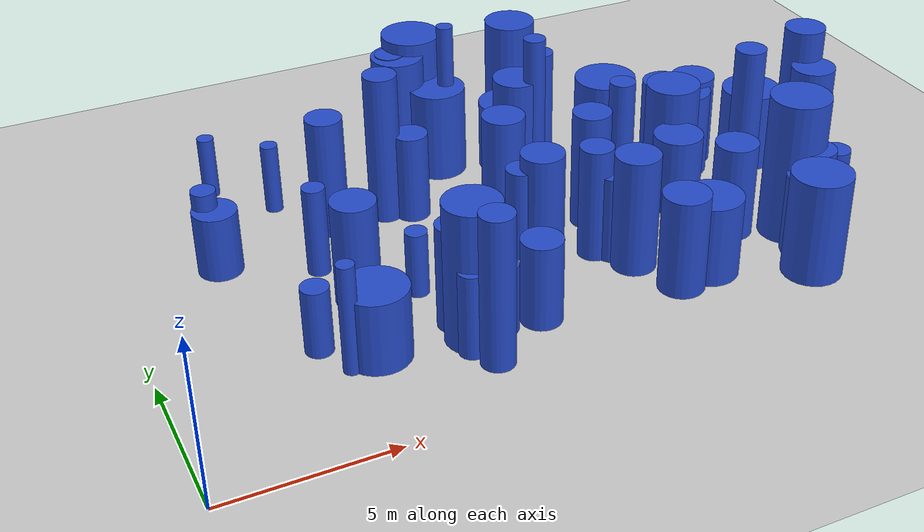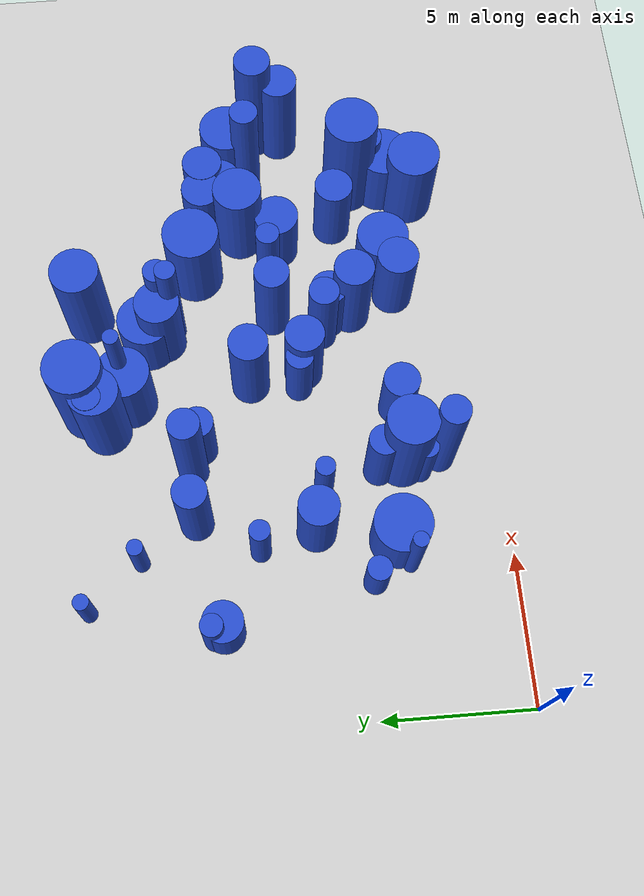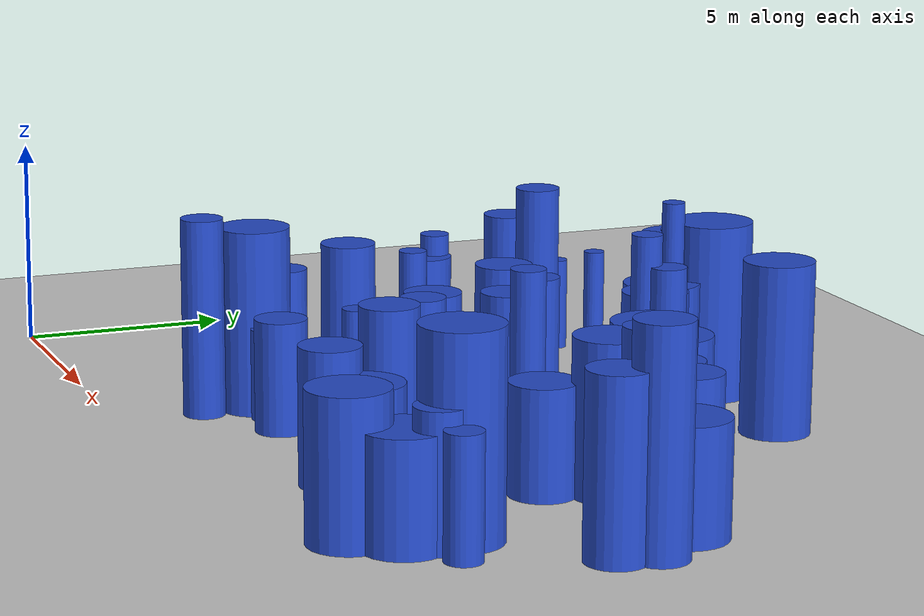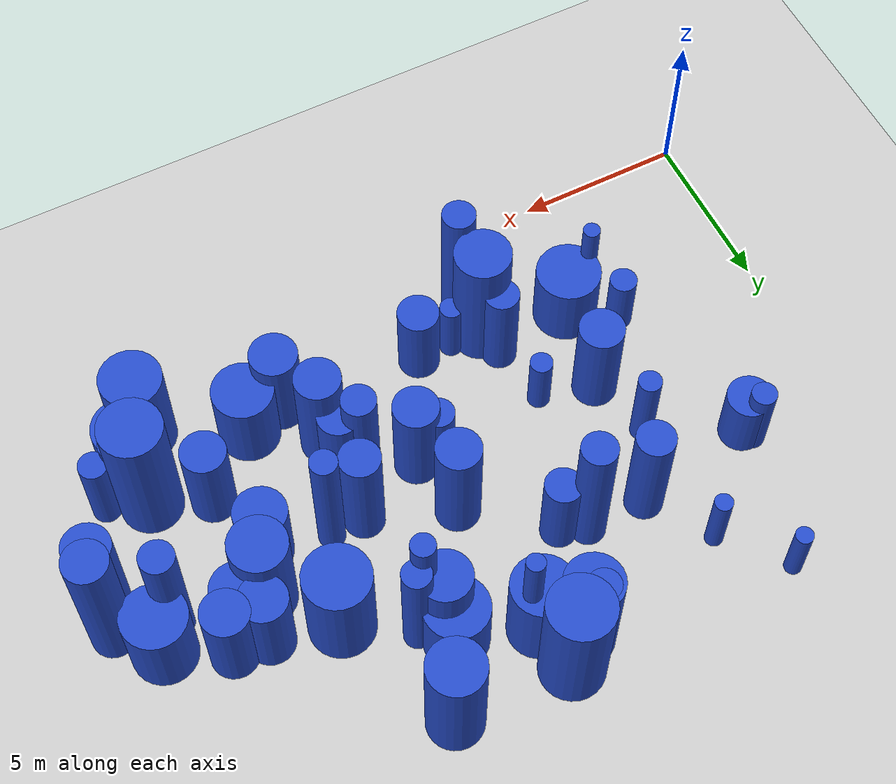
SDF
<sdf version="1.6">
 <world name="default">
  <model name="ground_plane">
   <static>1</static>
   <link name="link">
    <collision name="collision">
     <geometry><plane><normal>0 0 1</normal><size>100 100</size></plane></geometry>
     <surface><friction><ode><mu>100</mu><mu2>50</mu2></ode></friction></surface>
    </collision>
    <visual name="visual">
     <cast_shadows>0</cast_shadows>
     <geometry><plane><normal>0 0 1</normal><size>100 100</size></plane></geometry>
     <material>
      <script><uri>file://media/materials/scripts/gazebo.material</uri><name>Gazebo/Grey</name></script>
     </material>
    </visual>
   </link>
  </model>
  <model name="0">
   <static>0</static>
   <link name="link">
    <inertial>
     <mass>2</mass>
     <inertia><ixx>3.82085</ixx><ixy>0</ixy><ixz>0</ixz><iyy>3.82085</iyy><iyz>0</iyz><izz>0.122841</izz></inertia>
    </inertial>
    <collision name="collision">
     <geometry><cylinder><length>4.74937</length><radius>0.350486</radius></cylinder></geometry>
     <surface><contact><collide_without_contact>1</collide_without_contact></contact></surface>
    </collision>
    <visual name="visual">
     <geometry><cylinder><length>4.74937</length><radius>0.350486</radius></cylinder></geometry>
     <material>
      <script><uri>file://media/materials/scripts/gazebo.material</uri><name>Gazebo/Blue</name></script>
     </material>
    </visual>
    <gravity>0</gravity>
   </link>
   <pose>13.9637 10.7957 2.37469 0 -0 0</pose>
  </model>
  <model name="23">
   <static>0</static>
   <link name="link">
    <inertial>
     <mass>2</mass>
     <inertia><ixx>1.86215</ixx><ixy>0</ixy><ixz>0</ixz><iyy>1.86215</iyy><iyz>0</iyz><izz>0.4961</izz></inertia>
    </inertial>
    <collision name="collision">
     <geometry><cylinder><length>3.11201</length><radius>0.704343</radius></cylinder></geometry>
     <surface><contact><collide_without_contact>1</collide_without_contact></contact></surface>
    </collision>
    <visual name="visual">
     <geometry><cylinder><length>3.11201</length><radius>0.704343</radius></cylinder></geometry>
     <material>
      <script><uri>file://media/materials/scripts/gazebo.material</uri><name>Gazebo/Blue</name></script>
     </material>
    </visual>
    <gravity>0</gravity>
   </link>
   <pose>14.7881 2.99423 1.55601 0 -0 0</pose>
  </model>
  <model name="28">
   <static>0</static>
   <link name="link">
    <inertial>
     <mass>2</mass>
     <inertia><ixx>1.90148</ixx><ixy>0</ixy><ixz>0</ixz><iyy>1.90148</iyy><iyz>0</iyz><izz>0.266141</izz></inertia>
    </inertial>
    <collision name="collision">
     <geometry><cylinder><length>3.25737</length><radius>0.515889</radius></cylinder></geometry>
     <surface><contact><collide_without_contact>1</collide_without_contact></contact></surface>
    </collision>
    <visual name="visual">
     <geometry><cylinder><length>3.25737</length><radius>0.515889</radius></cylinder></geometry>
     <material>
      <script><uri>file://media/materials/scripts/gazebo.material</uri><name>Gazebo/Blue</name></script>
     </material>
    </visual>
    <gravity>0</gravity>
   </link>
   <pose>8.19868 4.18258 1.62868 0 -0 0</pose>
  </model>
  <model name="42">
   <static>0</static>
   <link name="link">
    <inertial>
     <mass>2</mass>
     <inertia><ixx>1.3081</ixx><ixy>0</ixy><ixz>0</ixz><iyy>1.3081</iyy><iyz>0</iyz><izz>0.176853</izz></inertia>
    </inertial>
    <collision name="collision">
     <geometry><cylinder><length>2.70519</length><radius>0.420539</radius></cylinder></geometry>
     <surface><contact><collide_without_contact>1</collide_without_contact></contact></surface>
    </collision>
    <visual name="visual">
     <geometry><cylinder><length>2.70519</length><radius>0.420539</radius></cylinder></geometry>
     <material>
      <script><uri>file://media/materials/scripts/gazebo.material</uri><name>Gazebo/Blue</name></script>
     </material>
    </visual>
    <gravity>0</gravity>
   </link>
   <pose>20.533 3.76774 1.3526 0 -0 0</pose>
  </model>
  <model name="56">
   <static>0</static>
   <link name="link">
    <inertial>
     <mass>2</mass>
     <inertia><ixx>1.34214</ixx><ixy>0</ixy><ixz>0</ixz><iyy>1.34214</iyy><iyz>0</iyz><izz>0.594662</izz></inertia>
    </inertial>
    <collision name="collision">
     <geometry><cylinder><length>2.50377</length><radius>0.771143</radius></cylinder></geometry>
     <surface><contact><collide_without_contact>1</collide_without_contact></contact></surface>
    </collision>
    <visual name="visual">
     <geometry><cylinder><length>2.50377</length><radius>0.771143</radius></cylinder></geometry>
     <material>
      <script><uri>file://media/materials/scripts/gazebo.material</uri><name>Gazebo/Blue</name></script>
     </material>
    </visual>
    <gravity>0</gravity>
   </link>
   <pose>17.0113 6.99255 1.25189 0 -0 0</pose>
  </model>
  <model name="65">
   <static>0</static>
   <link name="link">
    <inertial>
     <mass>2</mass>
     <inertia><ixx>1.48381</ixx><ixy>0</ixy><ixz>0</ixz><iyy>1.48381</iyy><iyz>0</iyz><izz>0.389355</izz></inertia>
    </inertial>
    <collision name="collision">
     <geometry><cylinder><length>2.78116</length><radius>0.623983</radius></cylinder></geometry>
     <surface><contact><collide_without_contact>1</collide_without_contact></contact></surface>
    </collision>
    <visual name="visual">
     <geometry><cylinder><length>2.78116</length><radius>0.623983</radius></cylinder></geometry>
     <material>
      <script><uri>file://media/materials/scripts/gazebo.material</uri><name>Gazebo/Blue</name></script>
     </material>
    </visual>
    <gravity>0</gravity>
   </link>
   <pose>13.9256 5.41182 1.39058 0 -0 0</pose>
  </model>
  <model name="67">
   <static>0</static>
   <link name="link">
    <inertial>
     <mass>2</mass>
     <inertia><ixx>3.45913</ixx><ixy>0</ixy><ixz>0</ixz><iyy>3.45913</iyy><iyz>0</iyz><izz>0.154991</izz></inertia>
    </inertial>
    <collision name="collision">
     <geometry><cylinder><length>4.50442</length><radius>0.39369</radius></cylinder></geometry>
     <surface><contact><collide_without_contact>1</collide_without_contact></contact></surface>
    </collision>
    <visual name="visual">
     <geometry><cylinder><length>4.50442</length><radius>0.39369</radius></cylinder></geometry>
     <material>
      <script><uri>file://media/materials/scripts/gazebo.material</uri><name>Gazebo/Blue</name></script>
     </material>
    </visual>
    <gravity>0</gravity>
   </link>
   <pose>15.1867 7.39624 2.25221 0 -0 0</pose>
  </model>
  <model name="69">
   <static>0</static>
   <link name="link">
    <inertial>
     <mass>2</mass>
     <inertia><ixx>2.30583</ixx><ixy>0</ixy><ixz>0</ixz><iyy>2.30583</iyy><iyz>0</iyz><izz>0.930994</izz></inertia>
    </inertial>
    <collision name="collision">
     <geometry><cylinder><length>3.32295</length><radius>0.96488</radius></cylinder></geometry>
     <surface><contact><collide_without_contact>1</collide_without_contact></contact></surface>
    </collision>
    <visual name="visual">
     <geometry><cylinder><length>3.32295</length><radius>0.96488</radius></cylinder></geometry>
     <material>
      <script><uri>file://media/materials/scripts/gazebo.material</uri><name>Gazebo/Blue</name></script>
     </material>
    </visual>
    <gravity>0</gravity>
   </link>
   <pose>16.075 9.98892 1.66147 0 -0 0</pose>
  </model>
  <model name="75">
   <static>0</static>
   <link name="link">
    <inertial>
     <mass>2</mass>
     <inertia><ixx>2.1011</ixx><ixy>0</ixy><ixz>0</ixz><iyy>2.1011</iyy><iyz>0</iyz><izz>0.443889</izz></inertia>
    </inertial>
    <collision name="collision">
     <geometry><cylinder><length>3.35781</length><radius>0.66625</radius></cylinder></geometry>
     <surface><contact><collide_without_contact>1</collide_without_contact></contact></surface>
    </collision>
    <visual name="visual">
     <geometry><cylinder><length>3.35781</length><radius>0.66625</radius></cylinder></geometry>
     <material>
      <script><uri>file://media/materials/scripts/gazebo.material</uri><name>Gazebo/Blue</name></script>
     </material>
    </visual>
    <gravity>0</gravity>
   </link>
   <pose>12.0255 6.41465 1.67891 0 -0 0</pose>
  </model>
  <model name="82">
   <static>0</static>
   <link name="link">
    <inertial>
     <mass>2</mass>
     <inertia><ixx>3.43627</ixx><ixy>0</ixy><ixz>0</ixz><iyy>3.43627</iyy><iyz>0</iyz><izz>0.901871</izz></inertia>
    </inertial>
    <collision name="collision">
     <geometry><cylinder><length>4.23226</length><radius>0.949669</radius></cylinder></geometry>
     <surface><contact><collide_without_contact>1</collide_without_contact></contact></surface>
    </collision>
    <visual name="visual">
     <geometry><cylinder><length>4.23226</length><radius>0.949669</radius></cylinder></geometry>
     <material>
      <script><uri>file://media/materials/scripts/gazebo.material</uri><name>Gazebo/Blue</name></script>
     </material>
    </visual>
    <gravity>0</gravity>
   </link>
   <pose>11.0478 13.9036 2.11613 0 -0 0</pose>
  </model>
  <model name="91">
   <static>0</static>
   <link name="link">
    <inertial>
     <mass>2</mass>
     <inertia><ixx>2.86372</ixx><ixy>0</ixy><ixz>0</ixz><iyy>2.86372</iyy><iyz>0</iyz><izz>0.467923</izz></inertia>
    </inertial>
    <collision name="collision">
     <geometry><cylinder><length>3.97222</length><radius>0.684049</radius></cylinder></geometry>
     <surface><contact><collide_without_contact>1</collide_without_contact></contact></surface>
    </collision>
    <visual name="visual">
     <geometry><cylinder><length>3.97222</length><radius>0.684049</radius></cylinder></geometry>
     <material>
      <script><uri>file://media/materials/scripts/gazebo.material</uri><name>Gazebo/Blue</name></script>
     </material>
    </visual>
    <gravity>0</gravity>
   </link>
   <pose>21.5916 6.60157 1.98611 0 -0 0</pose>
  </model>
  <model name="95">
   <static>0</static>
   <link name="link">
    <inertial>
     <mass>2</mass>
     <inertia><ixx>1.48896</ixx><ixy>0</ixy><ixz>0</ixz><iyy>1.48896</iyy><iyz>0</iyz><izz>0.809699</izz></inertia>
    </inertial>
    <collision name="collision">
     <geometry><cylinder><length>2.55043</length><radius>0.899833</radius></cylinder></geometry>
     <surface><contact><collide_without_contact>1</collide_without_contact></contact></surface>
    </collision>
    <visual name="visual">
     <geometry><cylinder><length>2.55043</length><radius>0.899833</radius></cylinder></geometry>
     <material>
      <script><uri>file://media/materials/scripts/gazebo.material</uri><name>Gazebo/Blue</name></script>
     </material>
    </visual>
    <gravity>0</gravity>
   </link>
   <pose>15.9343 3.34985 1.27521 0 -0 0</pose>
  </model>
  <model name="100">
   <static>0</static>
   <link name="link">
    <inertial>
     <mass>2</mass>
     <inertia><ixx>3.89591</ixx><ixy>0</ixy><ixz>0</ixz><iyy>3.89591</iyy><iyz>0</iyz><izz>0.839775</izz></inertia>
    </inertial>
    <collision name="collision">
     <geometry><cylinder><length>4.56685</length><radius>0.916392</radius></cylinder></geometry>
     <surface><contact><collide_without_contact>1</collide_without_contact></contact></surface>
    </collision>
    <visual name="visual">
     <geometry><cylinder><length>4.56685</length><radius>0.916392</radius></cylinder></geometry>
     <material>
      <script><uri>file://media/materials/scripts/gazebo.material</uri><name>Gazebo/Blue</name></script>
     </material>
    </visual>
    <gravity>0</gravity>
   </link>
   <pose>19.3333 4.19941 2.28343 0 -0 0</pose>
  </model>
  <model name="103">
   <static>0</static>
   <link name="link">
    <inertial>
     <mass>2</mass>
     <inertia><ixx>3.29088</ixx><ixy>0</ixy><ixz>0</ixz><iyy>3.29088</iyy><iyz>0</iyz><izz>0.244408</izz></inertia>
    </inertial>
    <collision name="collision">
     <geometry><cylinder><length>4.36028</length><radius>0.494377</radius></cylinder></geometry>
     <surface><contact><collide_without_contact>1</collide_without_contact></contact></surface>
    </collision>
    <visual name="visual">
     <geometry><cylinder><length>4.36028</length><radius>0.494377</radius></cylinder></geometry>
     <material>
      <script><uri>file://media/materials/scripts/gazebo.material</uri><name>Gazebo/Blue</name></script>
     </material>
    </visual>
    <gravity>0</gravity>
   </link>
   <pose>20.099 7.88013 2.18014 0 -0 0</pose>
  </model>
  <model name="104">
   <static>0</static>
   <link name="link">
    <inertial>
     <mass>2</mass>
     <inertia>
      <ixx>0.890538</ixx>
      <ixy>0</ixy>
      <ixz>0</ixz>
      <iyy>0.890538</iyy>
      <iyz>0</iyz>
      <izz>0.072293</izz>
     </inertia>
    </inertial>
    <collision name="collision">
     <geometry><cylinder><length>2.26414</length><radius>0.268874</radius></cylinder></geometry>
     <surface><contact><collide_without_contact>1</collide_without_contact></contact></surface>
    </collision>
    <visual name="visual">
     <geometry><cylinder><length>2.26414</length><radius>0.268874</radius></cylinder></geometry>
     <material>
      <script><uri>file://media/materials/scripts/gazebo.material</uri><name>Gazebo/Blue</name></script>
     </material>
    </visual>
    <gravity>0</gravity>
   </link>
   <pose>5.60318 12.2797 1.13207 0 -0 0</pose>
  </model>
  <model name="105">
   <static>0</static>
   <link name="link">
    <inertial>
     <mass>2</mass>
     <inertia><ixx>4.0356</ixx><ixy>0</ixy><ixz>0</ixz><iyy>4.0356</iyy><iyz>0</iyz><izz>0.07058</izz></inertia>
    </inertial>
    <collision name="collision">
     <geometry><cylinder><length>4.89917</length><radius>0.265669</radius></cylinder></geometry>
     <surface><contact><collide_without_contact>1</collide_without_contact></contact></surface>
    </collision>
    <visual name="visual">
     <geometry><cylinder><length>4.89917</length><radius>0.265669</radius></cylinder></geometry>
     <material>
      <script><uri>file://media/materials/scripts/gazebo.material</uri><name>Gazebo/Blue</name></script>
     </material>
    </visual>
    <gravity>0</gravity>
   </link>
   <pose>11.6727 12.5603 2.44958 0 -0 0</pose>
  </model>
  <model name="108">
   <static>0</static>
   <link name="link">
    <inertial>
     <mass>2</mass>
     <inertia><ixx>1.72026</ixx><ixy>0</ixy><ixz>0</ixz><iyy>1.72026</iyy><iyz>0</iyz><izz>0.476667</izz></inertia>
    </inertial>
    <collision name="collision">
     <geometry><cylinder><length>2.98187</length><radius>0.690411</radius></cylinder></geometry>
     <surface><contact><collide_without_contact>1</collide_without_contact></contact></surface>
    </collision>
    <visual name="visual">
     <geometry><cylinder><length>2.98187</length><radius>0.690411</radius></cylinder></geometry>
     <material>
      <script><uri>file://media/materials/scripts/gazebo.material</uri><name>Gazebo/Blue</name></script>
     </material>
    </visual>
    <gravity>0</gravity>
   </link>
   <pose>19.0479 9.46239 1.49094 0 -0 0</pose>
  </model>
  <model name="116">
   <static>0</static>
   <link name="link">
    <inertial>
     <mass>2</mass>
     <inertia><ixx>1.28323</ixx><ixy>0</ixy><ixz>0</ixz><iyy>1.28323</iyy><iyz>0</iyz><izz>0.885443</izz></inertia>
    </inertial>
    <collision name="collision">
     <geometry><cylinder><length>2.24567</length><radius>0.94098</radius></cylinder></geometry>
     <surface><contact><collide_without_contact>1</collide_without_contact></contact></surface>
    </collision>
    <visual name="visual">
     <geometry><cylinder><length>2.24567</length><radius>0.94098</radius></cylinder></geometry>
     <material>
      <script><uri>file://media/materials/scripts/gazebo.material</uri><name>Gazebo/Blue</name></script>
     </material>
    </visual>
    <gravity>0</gravity>
   </link>
   <pose>13.4699 11.7379 1.12284 0 -0 0</pose>
  </model>
  <model name="117">
   <static>0</static>
   <link name="link">
    <inertial>
     <mass>2</mass>
     <inertia><ixx>0.80327</ixx><ixy>0</ixy><ixz>0</ixz><iyy>0.80327</iyy><iyz>0</iyz><izz>0.164603</izz></inertia>
    </inertial>
    <collision name="collision">
     <geometry><cylinder><length>2.07986</length><radius>0.405713</radius></cylinder></geometry>
     <surface><contact><collide_without_contact>1</collide_without_contact></contact></surface>
    </collision>
    <visual name="visual">
     <geometry><cylinder><length>2.07986</length><radius>0.405713</radius></cylinder></geometry>
     <material>
      <script><uri>file://media/materials/scripts/gazebo.material</uri><name>Gazebo/Blue</name></script>
     </material>
    </visual>
    <gravity>0</gravity>
   </link>
   <pose>4.40351 4.67873 1.03993 0 -0 0</pose>
  </model>
  <model name="124">
   <static>0</static>
   <link name="link">
    <inertial>
     <mass>2</mass>
     <inertia><ixx>1.70853</ixx><ixy>0</ixy><ixz>0</ixz><iyy>1.70853</iyy><iyz>0</iyz><izz>0.488627</izz></inertia>
    </inertial>
    <collision name="collision">
     <geometry><cylinder><length>2.964</length><radius>0.699019</radius></cylinder></geometry>
     <surface><contact><collide_without_contact>1</collide_without_contact></contact></surface>
    </collision>
    <visual name="visual">
     <geometry><cylinder><length>2.964</length><radius>0.699019</radius></cylinder></geometry>
     <material>
      <script><uri>file://media/materials/scripts/gazebo.material</uri><name>Gazebo/Blue</name></script>
     </material>
    </visual>
    <gravity>0</gravity>
   </link>
   <pose>18.0058 9.5359 1.482 0 -0 0</pose>
  </model>
  <model name="130">
   <static>0</static>
   <link name="link">
    <inertial>
     <mass>2</mass>
     <inertia><ixx>2.41663</ixx><ixy>0</ixy><ixz>0</ixz><iyy>2.41663</iyy><iyz>0</iyz><izz>0.709872</izz></inertia>
    </inertial>
    <collision name="collision">
     <geometry><cylinder><length>3.51713</length><radius>0.842539</radius></cylinder></geometry>
     <surface><contact><collide_without_contact>1</collide_without_contact></contact></surface>
    </collision>
    <visual name="visual">
     <geometry><cylinder><length>3.51713</length><radius>0.842539</radius></cylinder></geometry>
     <material>
      <script><uri>file://media/materials/scripts/gazebo.material</uri><name>Gazebo/Blue</name></script>
     </material>
    </visual>
    <gravity>0</gravity>
   </link>
   <pose>17.5617 8.2997 1.75856 0 -0 0</pose>
  </model>
  <model name="154">
   <static>0</static>
   <link name="link">
    <inertial>
     <mass>2</mass>
     <inertia>
      <ixx>1.92605</ixx>
      <ixy>0</ixy>
      <ixz>0</ixz>
      <iyy>1.92605</iyy>
      <iyz>0</iyz>
      <izz>0.0642289</izz>
     </inertia>
    </inertial>
    <collision name="collision">
     <geometry><cylinder><length>3.37099</length><radius>0.253434</radius></cylinder></geometry>
     <surface><contact><collide_without_contact>1</collide_without_contact></contact></surface>
    </collision>
    <visual name="visual">
     <geometry><cylinder><length>3.37099</length><radius>0.253434</radius></cylinder></geometry>
     <material>
      <script><uri>file://media/materials/scripts/gazebo.material</uri><name>Gazebo/Blue</name></script>
     </material>
    </visual>
    <gravity>0</gravity>
   </link>
   <pose>4.89102 3.45856 1.6855 0 -0 0</pose>
  </model>
  <model name="160">
   <static>0</static>
   <link name="link">
    <inertial>
     <mass>2</mass>
     <inertia><ixx>4.26634</ixx><ixy>0</ixy><ixz>0</ixz><iyy>4.26634</iyy><iyz>0</iyz><izz>0.406906</izz></inertia>
    </inertial>
    <collision name="collision">
     <geometry><cylinder><length>4.93734</length><radius>0.637892</radius></cylinder></geometry>
     <surface><contact><collide_without_contact>1</collide_without_contact></contact></surface>
    </collision>
    <visual name="visual">
     <geometry><cylinder><length>4.93734</length><radius>0.637892</radius></cylinder></geometry>
     <material>
      <script><uri>file://media/materials/scripts/gazebo.material</uri><name>Gazebo/Blue</name></script>
     </material>
    </visual>
    <gravity>0</gravity>
   </link>
   <pose>21.7808 7.46793 2.46867 0 -0 0</pose>
  </model>
  <model name="163">
   <static>0</static>
   <link name="link">
    <inertial>
     <mass>2</mass>
     <inertia><ixx>2.54391</ixx><ixy>0</ixy><ixz>0</ixz><iyy>2.54391</iyy><iyz>0</iyz><izz>0.356458</izz></inertia>
    </inertial>
    <collision name="collision">
     <geometry><cylinder><length>3.7675</length><radius>0.597041</radius></cylinder></geometry>
     <surface><contact><collide_without_contact>1</collide_without_contact></contact></surface>
    </collision>
    <visual name="visual">
     <geometry><cylinder><length>3.7675</length><radius>0.597041</radius></cylinder></geometry>
     <material>
      <script><uri>file://media/materials/scripts/gazebo.material</uri><name>Gazebo/Blue</name></script>
     </material>
    </visual>
    <gravity>0</gravity>
   </link>
   <pose>14.1482 7.34496 1.88375 0 -0 0</pose>
  </model>
  <model name="168">
   <static>0</static>
   <link name="link">
    <inertial>
     <mass>2</mass>
     <inertia>
      <ixx>0.823893</ixx>
      <ixy>0</ixy>
      <ixz>0</ixz>
      <iyy>0.823893</iyy>
      <iyz>0</iyz>
      <izz>0.11943</izz>
     </inertia>
    </inertial>
    <collision name="collision">
     <geometry><cylinder><length>2.14128</length><radius>0.345586</radius></cylinder></geometry>
     <surface><contact><collide_without_contact>1</collide_without_contact></contact></surface>
    </collision>
    <visual name="visual">
     <geometry><cylinder><length>2.14128</length><radius>0.345586</radius></cylinder></geometry>
     <material>
      <script><uri>file://media/materials/scripts/gazebo.material</uri><name>Gazebo/Blue</name></script>
     </material>
    </visual>
    <gravity>0</gravity>
   </link>
   <pose>9.36227 3.30652 1.07064 0 -0 0</pose>
  </model>
  <model name="186">
   <static>0</static>
   <link name="link">
    <inertial>
     <mass>2</mass>
     <inertia><ixx>1.49718</ixx><ixy>0</ixy><ixz>0</ixz><iyy>1.49718</iyy><iyz>0</iyz><izz>0.218656</izz></inertia>
    </inertial>
    <collision name="collision">
     <geometry><cylinder><length>2.88568</length><radius>0.467607</radius></cylinder></geometry>
     <surface><contact><collide_without_contact>1</collide_without_contact></contact></surface>
    </collision>
    <visual name="visual">
     <geometry><cylinder><length>2.88568</length><radius>0.467607</radius></cylinder></geometry>
     <material>
      <script><uri>file://media/materials/scripts/gazebo.material</uri><name>Gazebo/Blue</name></script>
     </material>
    </visual>
    <gravity>0</gravity>
   </link>
   <pose>11.4374 6.61972 1.44284 0 -0 0</pose>
  </model>
  <model name="204">
   <static>0</static>
   <link name="link">
    <inertial>
     <mass>2</mass>
     <inertia><ixx>2.60219</ixx><ixy>0</ixy><ixz>0</ixz><iyy>2.60219</iyy><iyz>0</iyz><izz>0.216827</izz></inertia>
    </inertial>
    <collision name="collision">
     <geometry><cylinder><length>3.86816</length><radius>0.465647</radius></cylinder></geometry>
     <surface><contact><collide_without_contact>1</collide_without_contact></contact></surface>
    </collision>
    <visual name="visual">
     <geometry><cylinder><length>3.86816</length><radius>0.465647</radius></cylinder></geometry>
     <material>
      <script><uri>file://media/materials/scripts/gazebo.material</uri><name>Gazebo/Blue</name></script>
     </material>
    </visual>
    <gravity>0</gravity>
   </link>
   <pose>10.1307 13.4974 1.93408 0 -0 0</pose>
  </model>
  <model name="210">
   <static>0</static>
   <link name="link">
    <inertial>
     <mass>2</mass>
     <inertia><ixx>3.04474</ixx><ixy>0</ixy><ixz>0</ixz><iyy>3.04474</iyy><iyz>0</iyz><izz>0.671848</izz></inertia>
    </inertial>
    <collision name="collision">
     <geometry><cylinder><length>4.03149</length><radius>0.819663</radius></cylinder></geometry>
     <surface><contact><collide_without_contact>1</collide_without_contact></contact></surface>
    </collision>
    <visual name="visual">
     <geometry><cylinder><length>4.03149</length><radius>0.819663</radius></cylinder></geometry>
     <material>
      <script><uri>file://media/materials/scripts/gazebo.material</uri><name>Gazebo/Blue</name></script>
     </material>
    </visual>
    <gravity>0</gravity>
   </link>
   <pose>14.5509 13.827 2.01574 0 -0 0</pose>
  </model>
  <model name="239">
   <static>0</static>
   <link name="link">
    <inertial>
     <mass>2</mass>
     <inertia>
      <ixx>0.915663</ixx>
      <ixy>0</ixy>
      <ixz>0</ixz>
      <iyy>0.915663</iyy>
      <iyz>0</iyz>
      <izz>0.444297</izz>
     </inertia>
    </inertial>
    <collision name="collision">
     <geometry><cylinder><length>2.03987</length><radius>0.666556</radius></cylinder></geometry>
     <surface><contact><collide_without_contact>1</collide_without_contact></contact></surface>
    </collision>
    <visual name="visual">
     <geometry><cylinder><length>2.03987</length><radius>0.666556</radius></cylinder></geometry>
     <material>
      <script><uri>file://media/materials/scripts/gazebo.material</uri><name>Gazebo/Blue</name></script>
     </material>
    </visual>
    <gravity>0</gravity>
   </link>
   <pose>3.13023 9.67576 1.01994 0 -0 0</pose>
  </model>
  <model name="251">
   <static>0</static>
   <link name="link">
    <inertial>
     <mass>2</mass>
     <inertia><ixx>1.77631</ixx><ixy>0</ixy><ixz>0</ixz><iyy>1.77631</iyy><iyz>0</iyz><izz>0.434542</izz></inertia>
    </inertial>
    <collision name="collision">
     <geometry><cylinder><length>3.05847</length><radius>0.659198</radius></cylinder></geometry>
     <surface><contact><collide_without_contact>1</collide_without_contact></contact></surface>
    </collision>
    <visual name="visual">
     <geometry><cylinder><length>3.05847</length><radius>0.659198</radius></cylinder></geometry>
     <material>
      <script><uri>file://media/materials/scripts/gazebo.material</uri><name>Gazebo/Blue</name></script>
     </material>
    </visual>
    <gravity>0</gravity>
   </link>
   <pose>17.7293 4.91754 1.52923 0 -0 0</pose>
  </model>
  <model name="255">
   <static>0</static>
   <link name="link">
    <inertial>
     <mass>2</mass>
     <inertia><ixx>1.3897</ixx><ixy>0</ixy><ixz>0</ixz><iyy>1.3897</iyy><iyz>0</iyz><izz>0.118542</izz></inertia>
    </inertial>
    <collision name="collision">
     <geometry><cylinder><length>2.82534</length><radius>0.344299</radius></cylinder></geometry>
     <surface><contact><collide_without_contact>1</collide_without_contact></contact></surface>
    </collision>
    <visual name="visual">
     <geometry><cylinder><length>2.82534</length><radius>0.344299</radius></cylinder></geometry>
     <material>
      <script><uri>file://media/materials/scripts/gazebo.material</uri><name>Gazebo/Blue</name></script>
     </material>
    </visual>
    <gravity>0</gravity>
   </link>
   <pose>5.699 8.34542 1.41267 0 -0 0</pose>
  </model>
  <model name="270">
   <static>0</static>
   <link name="link">
    <inertial>
     <mass>2</mass>
     <inertia><ixx>1.51486</ixx><ixy>0</ixy><ixz>0</ixz><iyy>1.51486</iyy><iyz>0</iyz><izz>0.898197</izz></inertia>
    </inertial>
    <collision name="collision">
     <geometry><cylinder><length>2.52875</length><radius>0.947732</radius></cylinder></geometry>
     <surface><contact><collide_without_contact>1</collide_without_contact></contact></surface>
    </collision>
    <visual name="visual">
     <geometry><cylinder><length>2.52875</length><radius>0.947732</radius></cylinder></geometry>
     <material>
      <script><uri>file://media/materials/scripts/gazebo.material</uri><name>Gazebo/Blue</name></script>
     </material>
    </visual>
    <gravity>0</gravity>
   </link>
   <pose>19.3232 2.96096 1.26437 0 -0 0</pose>
  </model>
  <model name="271">
   <static>0</static>
   <link name="link">
    <inertial>
     <mass>2</mass>
     <inertia><ixx>2.3098</ixx><ixy>0</ixy><ixz>0</ixz><iyy>2.3098</iyy><iyz>0</iyz><izz>0.262045</izz></inertia>
    </inertial>
    <collision name="collision">
     <geometry><cylinder><length>3.61562</length><radius>0.511903</radius></cylinder></geometry>
     <surface><contact><collide_without_contact>1</collide_without_contact></contact></surface>
    </collision>
    <visual name="visual">
     <geometry><cylinder><length>3.61562</length><radius>0.511903</radius></cylinder></geometry>
     <material>
      <script><uri>file://media/materials/scripts/gazebo.material</uri><name>Gazebo/Blue</name></script>
     </material>
    </visual>
    <gravity>0</gravity>
   </link>
   <pose>13.3896 5.65712 1.80781 0 -0 0</pose>
  </model>
  <model name="290">
   <static>0</static>
   <link name="link">
    <inertial>
     <mass>2</mass>
     <inertia><ixx>1.8244</ixx><ixy>0</ixy><ixz>0</ixz><iyy>1.8244</iyy><iyz>0</iyz><izz>0.817081</izz></inertia>
    </inertial>
    <collision name="collision">
     <geometry><cylinder><length>2.91465</length><radius>0.903926</radius></cylinder></geometry>
     <surface><contact><collide_without_contact>1</collide_without_contact></contact></surface>
    </collision>
    <visual name="visual">
     <geometry><cylinder><length>2.91465</length><radius>0.903926</radius></cylinder></geometry>
     <material>
      <script><uri>file://media/materials/scripts/gazebo.material</uri><name>Gazebo/Blue</name></script>
     </material>
    </visual>
    <gravity>0</gravity>
   </link>
   <pose>11.3039 12.4655 1.45732 0 -0 0</pose>
  </model>
  <model name="299">
   <static>0</static>
   <link name="link">
    <inertial>
     <mass>2</mass>
     <inertia><ixx>3.77595</ixx><ixy>0</ixy><ixz>0</ixz><iyy>3.77595</iyy><iyz>0</iyz><izz>0.246653</izz></inertia>
    </inertial>
    <collision name="collision">
     <geometry><cylinder><length>4.68143</length><radius>0.496641</radius></cylinder></geometry>
     <surface><contact><collide_without_contact>1</collide_without_contact></contact></surface>
    </collision>
    <visual name="visual">
     <geometry><cylinder><length>4.68143</length><radius>0.496641</radius></cylinder></geometry>
     <material>
      <script><uri>file://media/materials/scripts/gazebo.material</uri><name>Gazebo/Blue</name></script>
     </material>
    </visual>
    <gravity>0</gravity>
   </link>
   <pose>8.50836 2.07163 2.34071 0 -0 0</pose>
  </model>
  <model name="300">
   <static>0</static>
   <link name="link">
    <inertial>
     <mass>2</mass>
     <inertia><ixx>2.01141</ixx><ixy>0</ixy><ixz>0</ixz><iyy>2.01141</iyy><iyz>0</iyz><izz>0.445665</izz></inertia>
    </inertial>
    <collision name="collision">
     <geometry><cylinder><length>3.27589</length><radius>0.667582</radius></cylinder></geometry>
     <surface><contact><collide_without_contact>1</collide_without_contact></contact></surface>
    </collision>
    <visual name="visual">
     <geometry><cylinder><length>3.27589</length><radius>0.667582</radius></cylinder></geometry>
     <material>
      <script><uri>file://media/materials/scripts/gazebo.material</uri><name>Gazebo/Blue</name></script>
     </material>
    </visual>
    <gravity>0</gravity>
   </link>
   <pose>6.2201 6.46044 1.63795 0 -0 0</pose>
  </model>
  <model name="314">
   <static>0</static>
   <link name="link">
    <inertial>
     <mass>2</mass>
     <inertia><ixx>2.21041</ixx><ixy>0</ixy><ixz>0</ixz><iyy>2.21041</iyy><iyz>0</iyz><izz>0.827614</izz></inertia>
    </inertial>
    <collision name="collision">
     <geometry><cylinder><length>3.28323</length><radius>0.909733</radius></cylinder></geometry>
     <surface><contact><collide_without_contact>1</collide_without_contact></contact></surface>
    </collision>
    <visual name="visual">
     <geometry><cylinder><length>3.28323</length><radius>0.909733</radius></cylinder></geometry>
     <material>
      <script><uri>file://media/materials/scripts/gazebo.material</uri><name>Gazebo/Blue</name></script>
     </material>
    </visual>
    <gravity>0</gravity>
   </link>
   <pose>18.6549 2.02282 1.64161 0 -0 0</pose>
  </model>
  <model name="334">
   <static>0</static>
   <link name="link">
    <inertial>
     <mass>2</mass>
     <inertia>
      <ixx>0.709161</ixx>
      <ixy>0</ixy>
      <ixz>0</ixz>
      <iyy>0.709161</iyy>
      <iyz>0</iyz>
      <izz>0.0686356</izz>
     </inertia>
    </inertial>
    <collision name="collision">
     <geometry><cylinder><length>2.01223</length><radius>0.261984</radius></cylinder></geometry>
     <surface><contact><collide_without_contact>1</collide_without_contact></contact></surface>
    </collision>
    <visual name="visual">
     <geometry><cylinder><length>2.01223</length><radius>0.261984</radius></cylinder></geometry>
     <material>
      <script><uri>file://media/materials/scripts/gazebo.material</uri><name>Gazebo/Blue</name></script>
     </material>
    </visual>
    <gravity>0</gravity>
   </link>
   <pose>4.07556 14.0215 1.00611 0 -0 0</pose>
  </model>
  <model name="338">
   <static>0</static>
   <link name="link">
    <inertial>
     <mass>2</mass>
     <inertia><ixx>1.35917</ixx><ixy>0</ixy><ixz>0</ixz><iyy>1.35917</iyy><iyz>0</iyz><izz>0.376686</izz></inertia>
    </inertial>
    <collision name="collision">
     <geometry><cylinder><length>2.65046</length><radius>0.613748</radius></cylinder></geometry>
     <surface><contact><collide_without_contact>1</collide_without_contact></contact></surface>
    </collision>
    <visual name="visual">
     <geometry><cylinder><length>2.65046</length><radius>0.613748</radius></cylinder></geometry>
     <material>
      <script><uri>file://media/materials/scripts/gazebo.material</uri><name>Gazebo/Blue</name></script>
     </material>
    </visual>
    <gravity>0</gravity>
   </link>
   <pose>10.4404 3.32655 1.32523 0 -0 0</pose>
  </model>
  <model name="372">
   <static>0</static>
   <link name="link">
    <inertial>
     <mass>2</mass>
     <inertia><ixx>2.8286</ixx><ixy>0</ixy><ixz>0</ixz><iyy>2.8286</iyy><iyz>0</iyz><izz>0.178091</izz></inertia>
    </inertial>
    <collision name="collision">
     <geometry><cylinder><length>4.0543</length><radius>0.422008</radius></cylinder></geometry>
     <surface><contact><collide_without_contact>1</collide_without_contact></contact></surface>
    </collision>
    <visual name="visual">
     <geometry><cylinder><length>4.0543</length><radius>0.422008</radius></cylinder></geometry>
     <material>
      <script><uri>file://media/materials/scripts/gazebo.material</uri><name>Gazebo/Blue</name></script>
     </material>
    </visual>
    <gravity>0</gravity>
   </link>
   <pose>14.3321 11.1571 2.02715 0 -0 0</pose>
  </model>
  <model name="376">
   <static>0</static>
   <link name="link">
    <inertial>
     <mass>2</mass>
     <inertia><ixx>1.63634</ixx><ixy>0</ixy><ixz>0</ixz><iyy>1.63634</iyy><iyz>0</iyz><izz>0.645225</izz></inertia>
    </inertial>
    <collision name="collision">
     <geometry><cylinder><length>2.80756</length><radius>0.803259</radius></cylinder></geometry>
     <surface><contact><collide_without_contact>1</collide_without_contact></contact></surface>
    </collision>
    <visual name="visual">
     <geometry><cylinder><length>2.80756</length><radius>0.803259</radius></cylinder></geometry>
     <material>
      <script><uri>file://media/materials/scripts/gazebo.material</uri><name>Gazebo/Blue</name></script>
     </material>
    </visual>
    <gravity>0</gravity>
   </link>
   <pose>18.4415 8.9259 1.40378 0 -0 0</pose>
  </model>
  <model name="386">
   <static>0</static>
   <link name="link">
    <inertial>
     <mass>2</mass>
     <inertia><ixx>2.81265</ixx><ixy>0</ixy><ixz>0</ixz><iyy>2.81265</iyy><iyz>0</iyz><izz>0.701896</izz></inertia>
    </inertial>
    <collision name="collision">
     <geometry><cylinder><length>3.84321</length><radius>0.837793</radius></cylinder></geometry>
     <surface><contact><collide_without_contact>1</collide_without_contact></contact></surface>
    </collision>
    <visual name="visual">
     <geometry><cylinder><length>3.84321</length><radius>0.837793</radius></cylinder></geometry>
     <material>
      <script><uri>file://media/materials/scripts/gazebo.material</uri><name>Gazebo/Blue</name></script>
     </material>
    </visual>
    <gravity>0</gravity>
   </link>
   <pose>10.32 13.3099 1.9216 0 -0 0</pose>
  </model>
  <model name="388">
   <static>0</static>
   <link name="link">
    <inertial>
     <mass>2</mass>
     <inertia><ixx>1.30269</ixx><ixy>0</ixy><ixz>0</ixz><iyy>1.30269</iyy><iyz>0</iyz><izz>0.928459</izz></inertia>
    </inertial>
    <collision name="collision">
     <geometry><cylinder><length>2.24294</length><radius>0.963566</radius></cylinder></geometry>
     <surface><contact><collide_without_contact>1</collide_without_contact></contact></surface>
    </collision>
    <visual name="visual">
     <geometry><cylinder><length>2.24294</length><radius>0.963566</radius></cylinder></geometry>
     <material>
      <script><uri>file://media/materials/scripts/gazebo.material</uri><name>Gazebo/Blue</name></script>
     </material>
    </visual>
    <gravity>0</gravity>
   </link>
   <pose>5.75697 3.78995 1.12147 0 -0 0</pose>
  </model>
  <model name="392">
   <static>0</static>
   <link name="link">
    <inertial>
     <mass>2</mass>
     <inertia><ixx>1.16149</ixx><ixy>0</ixy><ixz>0</ixz><iyy>1.16149</iyy><iyz>0</iyz><izz>0.136449</izz></inertia>
    </inertial>
    <collision name="collision">
     <geometry><cylinder><length>2.56117</length><radius>0.36939</radius></cylinder></geometry>
     <surface><contact><collide_without_contact>1</collide_without_contact></contact></surface>
    </collision>
    <visual name="visual">
     <geometry><cylinder><length>2.56117</length><radius>0.36939</radius></cylinder></geometry>
     <material>
      <script><uri>file://media/materials/scripts/gazebo.material</uri><name>Gazebo/Blue</name></script>
     </material>
    </visual>
    <gravity>0</gravity>
   </link>
   <pose>2.94923 10.0031 1.28058 0 -0 0</pose>
  </model>
  <model name="408">
   <static>0</static>
   <link name="link">
    <inertial>
     <mass>2</mass>
     <inertia><ixx>2.5939</ixx><ixy>0</ixy><ixz>0</ixz><iyy>2.5939</iyy><iyz>0</iyz><izz>0.431404</izz></inertia>
    </inertial>
    <collision name="collision">
     <geometry><cylinder><length>3.77746</length><radius>0.656813</radius></cylinder></geometry>
     <surface><contact><collide_without_contact>1</collide_without_contact></contact></surface>
    </collision>
    <visual name="visual">
     <geometry><cylinder><length>3.77746</length><radius>0.656813</radius></cylinder></geometry>
     <material>
      <script><uri>file://media/materials/scripts/gazebo.material</uri><name>Gazebo/Blue</name></script>
     </material>
    </visual>
    <gravity>0</gravity>
   </link>
   <pose>11.6644 8.28685 1.88873 0 -0 0</pose>
  </model>
  <model name="417">
   <static>0</static>
   <link name="link">
    <inertial>
     <mass>2</mass>
     <inertia><ixx>1.48074</ixx><ixy>0</ixy><ixz>0</ixz><iyy>1.48074</iyy><iyz>0</iyz><izz>0.28943</izz></inertia>
    </inertial>
    <collision name="collision">
     <geometry><cylinder><length>2.83128</length><radius>0.537987</radius></cylinder></geometry>
     <surface><contact><collide_without_contact>1</collide_without_contact></contact></surface>
    </collision>
    <visual name="visual">
     <geometry><cylinder><length>2.83128</length><radius>0.537987</radius></cylinder></geometry>
     <material>
      <script><uri>file://media/materials/scripts/gazebo.material</uri><name>Gazebo/Blue</name></script>
     </material>
    </visual>
    <gravity>0</gravity>
   </link>
   <pose>9.40662 10.1091 1.41564 0 -0 0</pose>
  </model>
  <model name="427">
   <static>0</static>
   <link name="link">
    <inertial>
     <mass>2</mass>
     <inertia><ixx>1.67933</ixx><ixy>0</ixy><ixz>0</ixz><iyy>1.67933</iyy><iyz>0</iyz><izz>0.328664</izz></inertia>
    </inertial>
    <collision name="collision">
     <geometry><cylinder><length>3.01496</length><radius>0.573292</radius></cylinder></geometry>
     <surface><contact><collide_without_contact>1</collide_without_contact></contact></surface>
    </collision>
    <visual name="visual">
     <geometry><cylinder><length>3.01496</length><radius>0.573292</radius></cylinder></geometry>
     <material>
      <script><uri>file://media/materials/scripts/gazebo.material</uri><name>Gazebo/Blue</name></script>
     </material>
    </visual>
    <gravity>0</gravity>
   </link>
   <pose>19.6808 3.6029 1.50748 0 -0 0</pose>
  </model>
  <model name="431">
   <static>0</static>
   <link name="link">
    <inertial>
     <mass>2</mass>
     <inertia><ixx>1.54188</ixx><ixy>0</ixy><ixz>0</ixz><iyy>1.54188</iyy><iyz>0</iyz><izz>0.877681</izz></inertia>
    </inertial>
    <collision name="collision">
     <geometry><cylinder><length>2.57259</length><radius>0.936847</radius></cylinder></geometry>
     <surface><contact><collide_without_contact>1</collide_without_contact></contact></surface>
    </collision>
    <visual name="visual">
     <geometry><cylinder><length>2.57259</length><radius>0.936847</radius></cylinder></geometry>
     <material>
      <script><uri>file://media/materials/scripts/gazebo.material</uri><name>Gazebo/Blue</name></script>
     </material>
    </visual>
    <gravity>0</gravity>
   </link>
   <pose>20.7173 8.55203 1.28629 0 -0 0</pose>
  </model>
  <model name="436">
   <static>0</static>
   <link name="link">
    <inertial>
     <mass>2</mass>
     <inertia><ixx>3.52722</ixx><ixy>0</ixy><ixz>0</ixz><iyy>3.52722</iyy><iyz>0</iyz><izz>0.70407</izz></inertia>
    </inertial>
    <collision name="collision">
     <geometry><cylinder><length>4.36476</length><radius>0.839089</radius></cylinder></geometry>
     <surface><contact><collide_without_contact>1</collide_without_contact></contact></surface>
    </collision>
    <visual name="visual">
     <geometry><cylinder><length>4.36476</length><radius>0.839089</radius></cylinder></geometry>
     <material>
      <script><uri>file://media/materials/scripts/gazebo.material</uri><name>Gazebo/Blue</name></script>
     </material>
    </visual>
    <gravity>0</gravity>
   </link>
   <pose>8.40641 3.35895 2.18238 0 -0 0</pose>
  </model>
  <model name="448">
   <static>0</static>
   <link name="link">
    <inertial>
     <mass>2</mass>
     <inertia><ixx>4.00779</ixx><ixy>0</ixy><ixz>0</ixz><iyy>4.00779</iyy><iyz>0</iyz><izz>0.267893</izz></inertia>
    </inertial>
    <collision name="collision">
     <geometry><cylinder><length>4.82111</length><radius>0.517584</radius></cylinder></geometry>
     <surface><contact><collide_without_contact>1</collide_without_contact></contact></surface>
    </collision>
    <visual name="visual">
     <geometry><cylinder><length>4.82111</length><radius>0.517584</radius></cylinder></geometry>
     <material>
      <script><uri>file://media/materials/scripts/gazebo.material</uri><name>Gazebo/Blue</name></script>
     </material>
    </visual>
    <gravity>0</gravity>
   </link>
   <pose>8.63706 10.4242 2.41055 0 -0 0</pose>
  </model>
  <model name="456">
   <static>0</static>
   <link name="link">
    <inertial>
     <mass>2</mass>
     <inertia><ixx>2.52856</ixx><ixy>0</ixy><ixz>0</ixz><iyy>2.52856</iyy><iyz>0</iyz><izz>0.462434</izz></inertia>
    </inertial>
    <collision name="collision">
     <geometry><cylinder><length>3.71269</length><radius>0.680025</radius></cylinder></geometry>
     <surface><contact><collide_without_contact>1</collide_without_contact></contact></surface>
    </collision>
    <visual name="visual">
     <geometry><cylinder><length>3.71269</length><radius>0.680025</radius></cylinder></geometry>
     <material>
      <script><uri>file://media/materials/scripts/gazebo.material</uri><name>Gazebo/Blue</name></script>
     </material>
    </visual>
    <gravity>0</gravity>
   </link>
   <pose>14.126 4.58621 1.85634 0 -0 0</pose>
  </model>
  <model name="464">
   <static>0</static>
   <link name="link">
    <inertial>
     <mass>2</mass>
     <inertia><ixx>2.59466</ixx><ixy>0</ixy><ixz>0</ixz><iyy>2.59466</iyy><iyz>0</iyz><izz>0.319707</izz></inertia>
    </inertial>
    <collision name="collision">
     <geometry><cylinder><length>3.82215</length><radius>0.565427</radius></cylinder></geometry>
     <surface><contact><collide_without_contact>1</collide_without_contact></contact></surface>
    </collision>
    <visual name="visual">
     <geometry><cylinder><length>3.82215</length><radius>0.565427</radius></cylinder></geometry>
     <material>
      <script><uri>file://media/materials/scripts/gazebo.material</uri><name>Gazebo/Blue</name></script>
     </material>
    </visual>
    <gravity>0</gravity>
   </link>
   <pose>6.80825 10.3977 1.91107 0 -0 0</pose>
  </model>
  <model name="476">
   <static>0</static>
   <link name="link">
    <inertial>
     <mass>2</mass>
     <inertia>
      <ixx>0.756627</ixx>
      <ixy>0</ixy>
      <ixz>0</ixz>
      <iyy>0.756627</iyy>
      <iyz>0</iyz>
      <izz>0.111663</izz>
     </inertia>
    </inertial>
    <collision name="collision">
     <geometry><cylinder><length>2.05055</length><radius>0.33416</radius></cylinder></geometry>
     <surface><contact><collide_without_contact>1</collide_without_contact></contact></surface>
    </collision>
    <visual name="visual">
     <geometry><cylinder><length>2.05055</length><radius>0.33416</radius></cylinder></geometry>
     <material>
      <script><uri>file://media/materials/scripts/gazebo.material</uri><name>Gazebo/Blue</name></script>
     </material>
    </visual>
    <gravity>0</gravity>
   </link>
   <pose>7.87051 6.0638 1.02528 0 -0 0</pose>
  </model>
  <model name="485">
   <static>0</static>
   <link name="link">
    <inertial>
     <mass>2</mass>
     <inertia><ixx>2.11892</ixx><ixy>0</ixy><ixz>0</ixz><iyy>2.11892</iyy><iyz>0</iyz><izz>0.581769</izz></inertia>
    </inertial>
    <collision name="collision">
     <geometry><cylinder><length>3.31183</length><radius>0.762738</radius></cylinder></geometry>
     <surface><contact><collide_without_contact>1</collide_without_contact></contact></surface>
    </collision>
    <visual name="visual">
     <geometry><cylinder><length>3.31183</length><radius>0.762738</radius></cylinder></geometry>
     <material>
      <script><uri>file://media/materials/scripts/gazebo.material</uri><name>Gazebo/Blue</name></script>
     </material>
    </visual>
    <gravity>0</gravity>
   </link>
   <pose>13.5438 11.2246 1.65591 0 -0 0</pose>
  </model>
  <model name="496">
   <static>0</static>
   <link name="link">
    <inertial>
     <mass>2</mass>
     <inertia><ixx>1.22725</ixx><ixy>0</ixy><ixz>0</ixz><iyy>1.22725</iyy><iyz>0</iyz><izz>0.152935</izz></inertia>
    </inertial>
    <collision name="collision">
     <geometry><cylinder><length>2.62768</length><radius>0.391069</radius></cylinder></geometry>
     <surface><contact><collide_without_contact>1</collide_without_contact></contact></surface>
    </collision>
    <visual name="visual">
     <geometry><cylinder><length>2.62768</length><radius>0.391069</radius></cylinder></geometry>
     <material>
      <script><uri>file://media/materials/scripts/gazebo.material</uri><name>Gazebo/Blue</name></script>
     </material>
    </visual>
    <gravity>0</gravity>
   </link>
   <pose>8.08887 2.78422 1.31384 0 -0 0</pose>
  </model>
 </world>
</sdf>
